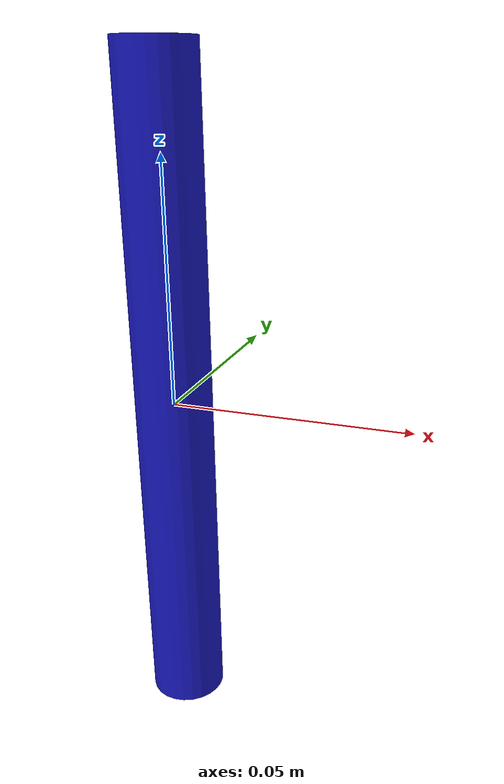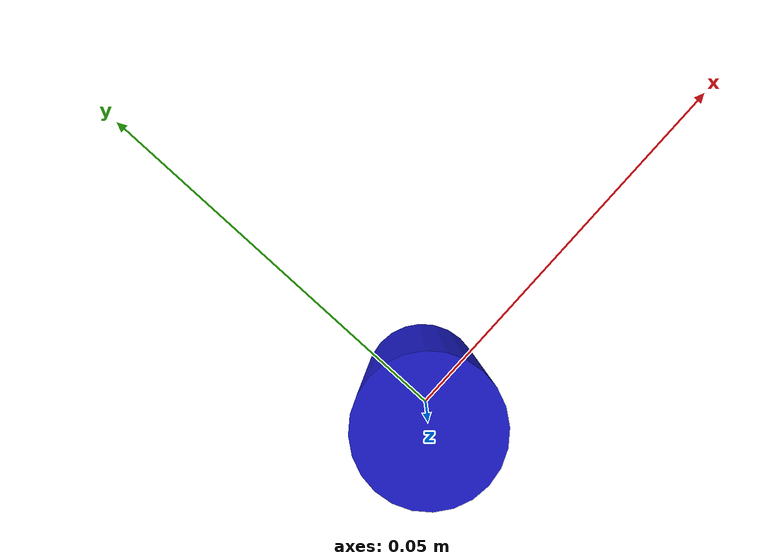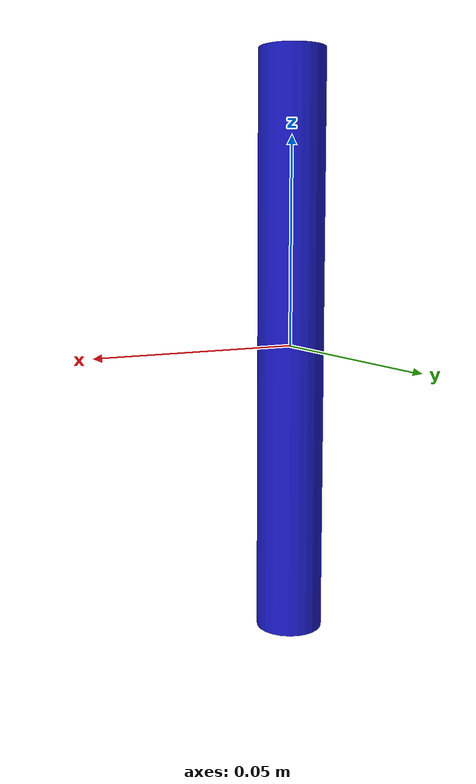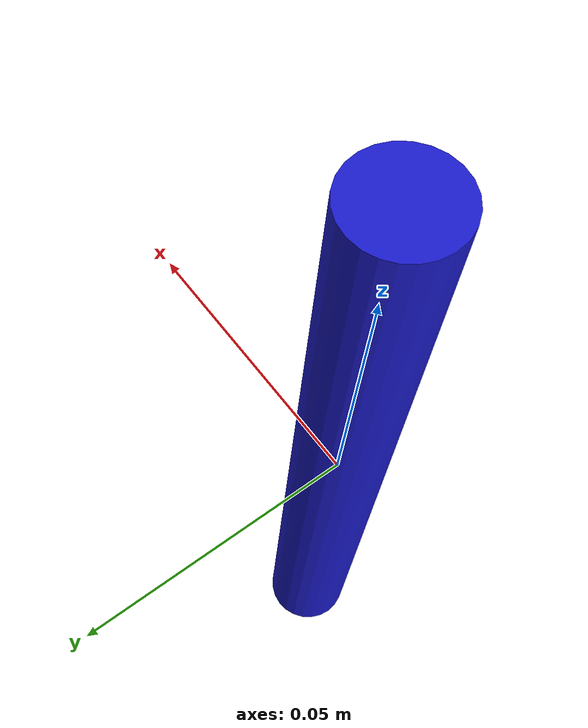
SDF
<?xml version="1.0"?>
<!-- A pen: cylinder 14 cm long, 16 mm thick, 20 g. High friction so the SO-101
     gripper can hold it. Spawned on the table, lying on its side, by pick_scene.launch.py. -->
<sdf version="1.9">
  <model name="pen">
    <link name="link">
      <inertial>
        <mass>0.02</mass>
        <inertia><ixx>3.3e-5</ixx><iyy>3.3e-5</iyy><izz>6.4e-7</izz><ixy>0</ixy><ixz>0</ixz><iyz>0</iyz></inertia>
      </inertial>
      <collision name="collision">
        <geometry><cylinder><radius>0.008</radius><length>0.14</length></cylinder></geometry>
        <surface><friction><ode><mu>2.0</mu><mu2>2.0</mu2></ode></friction></surface>
      </collision>
      <visual name="visual">
        <geometry><cylinder><radius>0.008</radius><length>0.14</length></cylinder></geometry>
        <material><ambient>0.1 0.1 0.8 1</ambient><diffuse>0.1 0.1 0.8 1</diffuse></material>
      </visual>
    </link>
  </model>
</sdf>
